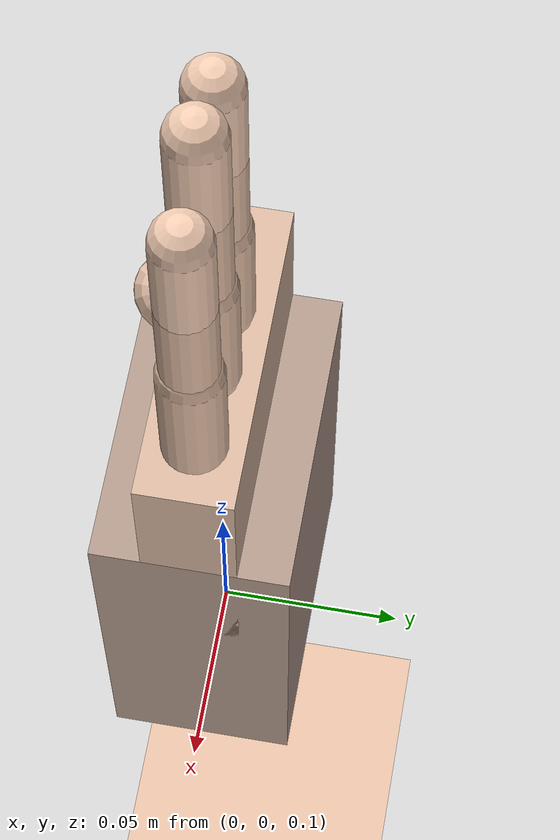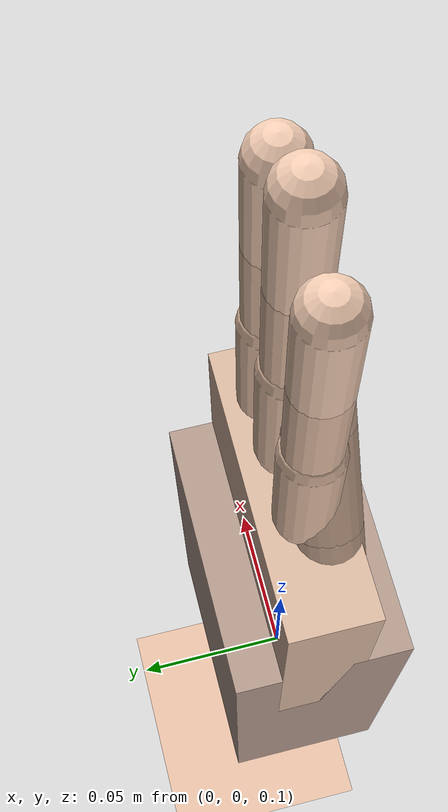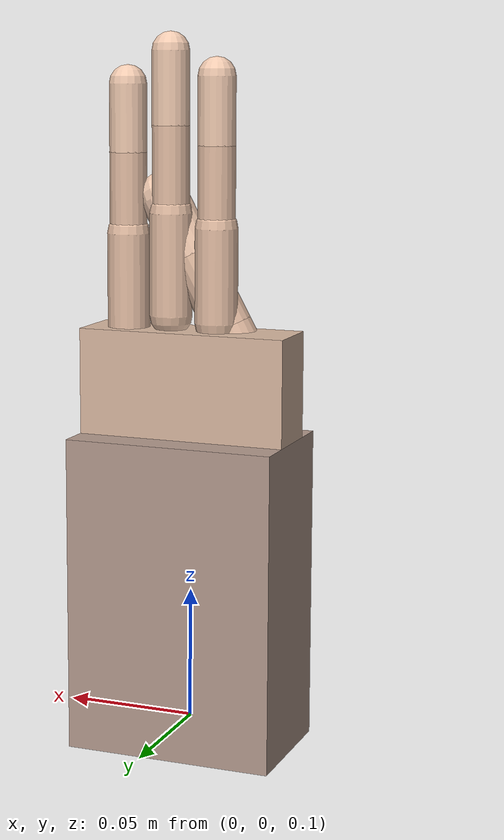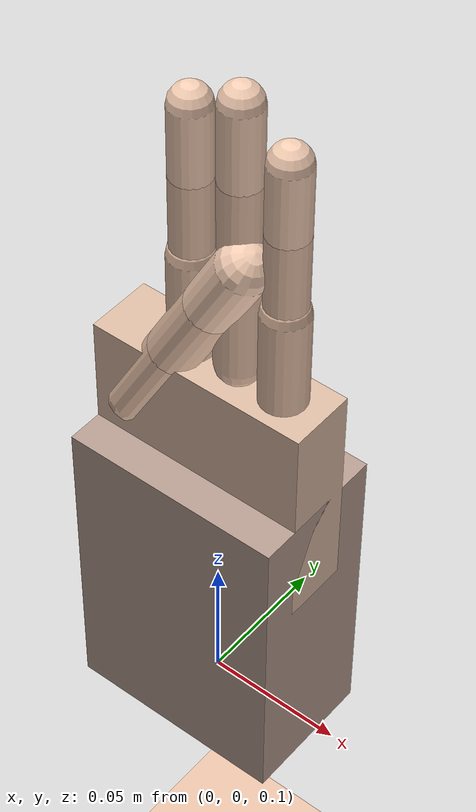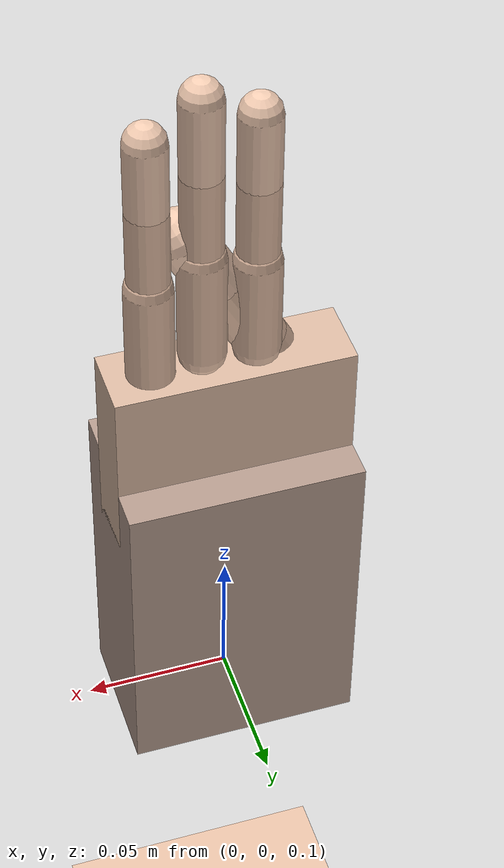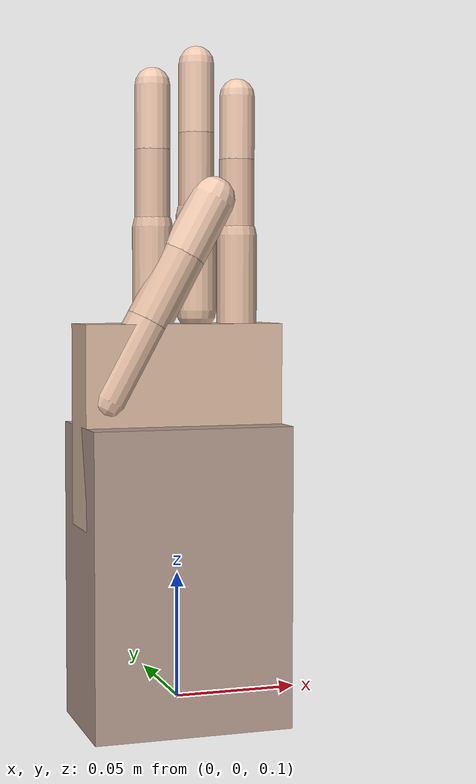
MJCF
<mujoco model="soma_hand">
  <compiler angle="radian" meshdir="." autolimits="true"/>

  <option timestep="0.002" integrator="implicitfast" cone="elliptic" impratio="10"/>

  <default>
    <joint damping="0.05" armature="0.01"/>
    <geom type="capsule" condim="4" friction="1.0 0.005 0.001" rgba="0.9 0.75 0.65 1"/>
    <position kp="5" kv="0.5" ctrlrange="-1.57 1.57" forcerange="-0.5 0.5"/>
    <site type="sphere" size="0.004" rgba="1 0 0 0.5"/>

    <default class="finger_link">
      <geom rgba="0.9 0.75 0.65 1"/>
    </default>
    <default class="fingertip">
      <geom rgba="0.95 0.8 0.7 1" friction="1.5 0.01 0.002"/>
    </default>
    <default class="abd_joint">
      <joint range="-0.35 0.35" damping="0.03"/>
    </default>
    <default class="mcp_joint">
      <joint range="-0.2 1.8" damping="0.05"/>
    </default>
    <default class="pip_joint">
      <joint range="-0.2 1.8" damping="0.04"/>
    </default>
    <default class="dip_joint">
      <joint range="-0.2 1.4" damping="0.03"/>
    </default>
    <default class="abd_actuator">
      <position kp="3.75" kv="0.375" ctrlrange="-0.35 0.35" forcerange="-0.3 0.3"/>
    </default>
    <default class="flex_actuator">
      <position kp="5" kv="0.5" ctrlrange="-0.2 1.8" forcerange="-0.5 0.5"/>
    </default>
    <default class="pip_actuator">
      <position kp="5" kv="0.5" ctrlrange="-0.2 1.8" forcerange="-0.5 0.5"/>
    </default>
    <default class="dip_actuator">
      <position kp="5" kv="0.5" ctrlrange="-0.2 1.4" forcerange="-0.5 0.5"/>
    </default>
    <!-- Thumb defaults -->
    <default class="thumb_cmc_flex_joint">
      <joint range="-0.5 1.5" damping="0.06"/>
    </default>
    <default class="thumb_cmc_abd_joint">
      <joint range="-0.5 1.2" damping="0.04"/>
    </default>
    <default class="thumb_mcp_joint">
      <joint range="-0.2 1.4" damping="0.04"/>
    </default>
    <default class="thumb_ip_joint">
      <joint range="-0.2 1.4" damping="0.03"/>
    </default>
  </default>

  <asset>
    <texture type="skybox" builtin="gradient" rgb1="0.6 0.7 0.8" rgb2="0.2 0.2 0.3" width="512" height="512"/>
    <texture name="grid" type="2d" builtin="checker" rgb1="0.4 0.4 0.4" rgb2="0.5 0.5 0.5" width="512" height="512"/>
    <material name="grid" texture="grid" texrepeat="4 4" reflectance="0.1"/>
  </asset>

  <worldbody>
    <light pos="0 0 1" dir="0 0 -1" diffuse="0.8 0.8 0.8"/>
    <light pos="0.3 0.3 0.8" dir="-0.3 -0.3 -0.8" diffuse="0.4 0.4 0.4"/>

    <!-- Ground plane -->
    <geom name="floor" type="plane" size="0.5 0.5 0.01" pos="0 0 -0.05" material="grid" conaffinity="1" condim="3"/>

    <!-- Forearm base (fixed) -->
    <body name="forearm" pos="0 0 0.15">
      <geom name="forearm_geom" type="box" size="0.04 0.025 0.06" rgba="0.7 0.6 0.55 1" mass="0.3"/>

      <!-- Palm -->
      <body name="palm" pos="0 0 0.06">
        <geom name="palm_geom" type="box" size="0.04 0.012 0.04" rgba="0.85 0.72 0.63 1" mass="0.1"/>

        <!-- ===== INDEX FINGER (IDs 0-3) ===== -->
        <body name="index_mcp" pos="0.025 0 0.04">
          <joint name="index_mcp_abd" class="abd_joint" axis="0 1 0"/>
          <joint name="index_mcp_flex" class="mcp_joint" axis="1 0 0"/>
          <geom class="finger_link" fromto="0 0 0 0 0 0.035" size="0.008" mass="0.01"/>
          <body name="index_pip" pos="0 0 0.035">
            <joint name="index_pip" class="pip_joint" axis="1 0 0"/>
            <geom class="finger_link" fromto="0 0 0 0 0 0.03" size="0.007" mass="0.008"/>
            <body name="index_dip" pos="0 0 0.03">
              <joint name="index_dip" class="dip_joint" axis="1 0 0"/>
              <geom class="fingertip" fromto="0 0 0 0 0 0.025" size="0.007" mass="0.006"/>
              <site name="index_tip" pos="0 0 0.025"/>
            </body>
          </body>
        </body>

        <!-- ===== MIDDLE FINGER (IDs 4-7) ===== -->
        <body name="middle_mcp" pos="0.008 0 0.045">
          <joint name="middle_mcp_abd" class="abd_joint" axis="0 1 0"/>
          <joint name="middle_mcp_flex" class="mcp_joint" axis="1 0 0"/>
          <geom class="finger_link" fromto="0 0 0 0 0 0.038" size="0.008" mass="0.01"/>
          <body name="middle_pip" pos="0 0 0.038">
            <joint name="middle_pip" class="pip_joint" axis="1 0 0"/>
            <geom class="finger_link" fromto="0 0 0 0 0 0.032" size="0.007" mass="0.008"/>
            <body name="middle_dip" pos="0 0 0.032">
              <joint name="middle_dip" class="dip_joint" axis="1 0 0"/>
              <geom class="fingertip" fromto="0 0 0 0 0 0.027" size="0.007" mass="0.006"/>
              <site name="middle_tip" pos="0 0 0.027"/>
            </body>
          </body>
        </body>

        <!-- ===== RING FINGER (IDs 8-11) ===== -->
        <body name="ring_mcp" pos="-0.01 0 0.043">
          <joint name="ring_mcp_abd" class="abd_joint" axis="0 1 0"/>
          <joint name="ring_mcp_flex" class="mcp_joint" axis="1 0 0"/>
          <geom class="finger_link" fromto="0 0 0 0 0 0.035" size="0.008" mass="0.01"/>
          <body name="ring_pip" pos="0 0 0.035">
            <joint name="ring_pip" class="pip_joint" axis="1 0 0"/>
            <geom class="finger_link" fromto="0 0 0 0 0 0.03" size="0.007" mass="0.008"/>
            <body name="ring_dip" pos="0 0 0.03">
              <joint name="ring_dip" class="dip_joint" axis="1 0 0"/>
              <geom class="fingertip" fromto="0 0 0 0 0 0.025" size="0.007" mass="0.006"/>
              <site name="ring_tip" pos="0 0 0.025"/>
            </body>
          </body>
        </body>

        <!-- ===== THUMB (IDs 12-15) ===== -->
        <body name="thumb_cmc" pos="-0.03 -0.005 0.01" euler="0 0.5 -0.8">
          <joint name="thumb_cmc_flex" class="thumb_cmc_flex_joint" axis="1 0 0"/>
          <joint name="thumb_cmc_abd" class="thumb_cmc_abd_joint" axis="0 1 0"/>
          <geom class="finger_link" fromto="0 0 0 0 0 0.035" size="0.009" mass="0.012"/>
          <body name="thumb_mcp" pos="0 0 0.035">
            <joint name="thumb_mcp" class="thumb_mcp_joint" axis="1 0 0"/>
            <geom class="finger_link" fromto="0 0 0 0 0 0.03" size="0.009" mass="0.01"/>
            <body name="thumb_ip_body" pos="0 0 0.03">
              <joint name="thumb_ip" class="thumb_ip_joint" axis="1 0 0"/>
              <geom class="fingertip" fromto="0 0 0 0 0 0.025" size="0.009" mass="0.008"/>
              <site name="thumb_tip" pos="0 0 0.025"/>
            </body>
          </body>
        </body>

      </body>
    </body>
  </worldbody>

  <contact>
    <exclude body1="palm" body2="index_mcp"/>
    <exclude body1="palm" body2="middle_mcp"/>
    <exclude body1="palm" body2="ring_mcp"/>
    <exclude body1="palm" body2="thumb_cmc"/>
  </contact>

  <actuator>
    <!-- Index finger (motor IDs 0-3) -->
    <position name="index_mcp_abd_act"  class="abd_actuator"  joint="index_mcp_abd"/>
    <position name="index_mcp_flex_act" class="flex_actuator"  joint="index_mcp_flex"/>
    <position name="index_pip_act"      class="pip_actuator"   joint="index_pip"/>
    <position name="index_dip_act"      class="dip_actuator"   joint="index_dip"/>

    <!-- Middle finger (motor IDs 4-7) -->
    <position name="middle_mcp_abd_act"  class="abd_actuator"  joint="middle_mcp_abd"/>
    <position name="middle_mcp_flex_act" class="flex_actuator"  joint="middle_mcp_flex"/>
    <position name="middle_pip_act"      class="pip_actuator"   joint="middle_pip"/>
    <position name="middle_dip_act"      class="dip_actuator"   joint="middle_dip"/>

    <!-- Ring finger (motor IDs 8-11) -->
    <position name="ring_mcp_abd_act"  class="abd_actuator"  joint="ring_mcp_abd"/>
    <position name="ring_mcp_flex_act" class="flex_actuator"  joint="ring_mcp_flex"/>
    <position name="ring_pip_act"      class="pip_actuator"   joint="ring_pip"/>
    <position name="ring_dip_act"      class="dip_actuator"   joint="ring_dip"/>

    <!-- Thumb (motor IDs 12-15) -->
    <position name="thumb_cmc_flex_act" class="flex_actuator"  joint="thumb_cmc_flex"/>
    <position name="thumb_cmc_abd_act"  class="abd_actuator"   joint="thumb_cmc_abd"/>
    <position name="thumb_mcp_act"      class="flex_actuator"  joint="thumb_mcp"/>
    <position name="thumb_ip_act"       class="dip_actuator"   joint="thumb_ip"/>
  </actuator>

  <sensor>
    <touch name="index_touch" site="index_tip"/>
    <touch name="middle_touch" site="middle_tip"/>
    <touch name="ring_touch" site="ring_tip"/>
    <touch name="thumb_touch" site="thumb_tip"/>
  </sensor>
</mujoco>
